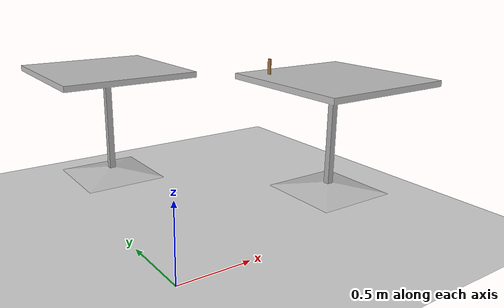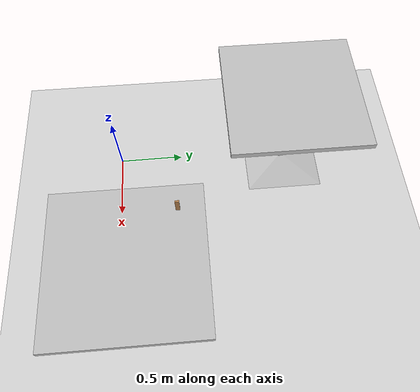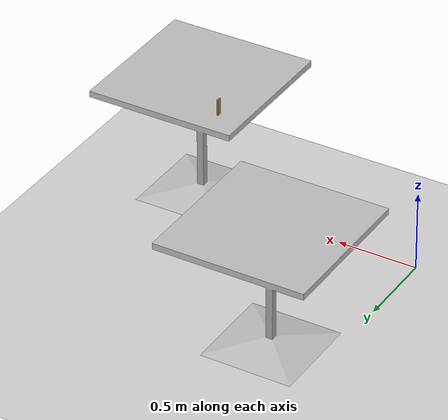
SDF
<sdf version="1.7">
 <world name="default">
  <light name="sun" type="directional">
   <pose>0 0 10 0 -0 0</pose>
   <diffuse>0.8 0.8 0.8 1</diffuse>
   <specular>0.2 0.2 0.2 1</specular>
   <attenuation>
    <range>1000</range>
    <constant>0.9</constant>
    <linear>0.01</linear>
    <quadratic>0.001</quadratic>
   </attenuation>
   <direction>-0.5 0.1 -0.9</direction>
   <spot><inner_angle>0</inner_angle><outer_angle>0</outer_angle><falloff>0</falloff></spot>
  </light>
  <model name="ground_plane">
   <static>1</static>
   <link name="link">
    <collision name="collision">
     <geometry><plane><normal>0 0 1</normal><size>100 100</size></plane></geometry>
     <surface>
      <contact><collide_bitmask>65535</collide_bitmask></contact>
      <friction><ode><mu>100</mu><mu2>50</mu2></ode></friction>
     </surface>
    </collision>
    <visual name="visual">
     <cast_shadows>0</cast_shadows>
     <geometry><plane><normal>0 0 1</normal><size>100 100</size></plane></geometry>
     <material>
      <script><uri>file://media/materials/scripts/gazebo.material</uri><name>Gazebo/Grey</name></script>
     </material>
    </visual>
   </link>
  </model>
  <gravity>0 0 -9.8</gravity>
  <magnetic_field>6e-06 2.3e-05 -4.2e-05</magnetic_field>
  <atmosphere type="adiabatic"/>
  <physics type="ode">
   <max_step_size>0.001</max_step_size>
   <real_time_factor>1</real_time_factor>
   <real_time_update_rate>1000</real_time_update_rate>
  </physics>
  <scene><ambient>0.4 0.4 0.4 1</ambient><background>0.7 0.7 0.7 1</background><shadows>1</shadows></scene>
  <spherical_coordinates>
   <surface_model>EARTH_WGS84</surface_model>
   <latitude_deg>0</latitude_deg>
   <longitude_deg>0</longitude_deg>
   <elevation>0</elevation>
   <heading_deg>0</heading_deg>
  </spherical_coordinates>
  <model name="cafe_table">
   <static>1</static>
   <link name="link">
    <collision name="surface">
     <pose>0 0 0.755 0 -0 0</pose>
     <geometry><box><size>0.913 0.913 0.04</size></box></geometry>
    </collision>
    <collision name="column">
     <pose>0 0 0.37 0 -0 0</pose>
     <geometry><box><size>0.042 0.042 0.74</size></box></geometry>
    </collision>
    <collision name="base">
     <pose>0 0 0.02 0 -0 0</pose>
     <geometry><box><size>0.56 0.56 0.04</size></box></geometry>
    </collision>
    <visual name="visual">
     <geometry><mesh><uri>model://cafe_table/meshes/cafe_table.dae</uri></mesh></geometry>
    </visual>
   </link>
   <pose>1.3 0.2 0.21 0 -0 0</pose>
  </model>
  <model name="cafe_table_clone">
   <static>1</static>
   <link name="link">
    <collision name="surface">
     <pose>0 0 0.755 0 -0 0</pose>
     <geometry><box><size>0.913 0.913 0.04</size></box></geometry>
    </collision>
    <collision name="column">
     <pose>0 0 0.37 0 -0 0</pose>
     <geometry><box><size>0.042 0.042 0.74</size></box></geometry>
    </collision>
    <collision name="base">
     <pose>0 0 0.02 0 -0 0</pose>
     <geometry><box><size>0.56 0.56 0.04</size></box></geometry>
    </collision>
    <visual name="visual">
     <geometry><mesh><uri>model://cafe_table/meshes/cafe_table.dae</uri></mesh></geometry>
    </visual>
   </link>
   <pose>0.2 1.3 0.21 0 -0 0</pose>
  </model>
  <model name="wood_block_10_2_1cm">
   <link name="link">
    <pose>0 0 0.005 0 -0 0</pose>
    <inertial>
     <mass>0.0125</mass>
     <inertia>
      <ixx>7.55208e-07</ixx>
      <ixy>0</ixy>
      <ixz>0</ixz>
      <iyy>1.05208e-05</iyy>
      <iyz>0</iyz>
      <izz>1.10677e-05</izz>
     </inertia>
    </inertial>
    <collision name="collision">
     <geometry><box><size>0.1 0.025 0.01</size></box></geometry>
     <surface>
      <contact>
       <poissons_ratio>0.347</poissons_ratio>
       <elastic_modulus>8.8e+09</elastic_modulus>
       <ode><kp>100000</kp><kd>1</kd><max_vel>1</max_vel><min_depth>0.001</min_depth></ode>
      </contact>
      <friction>
       <ode><mu>100</mu><mu2>50</mu2></ode>
       <torsional>
        <coefficient>1</coefficient>
        <use_patch_radius>0</use_patch_radius>
        <surface_radius>0.05</surface_radius>
       </torsional>
      </friction>
     </surface>
    </collision>
    <visual name="visual">
     <geometry><box><size>0.1 0.025 0.01</size></box></geometry>
     <material>
      <script><uri>file://media/materials/scripts/gazebo.material</uri><name>Gazebo/Wood</name></script>
     </material>
    </visual>
   </link>
   <pose>1.0 0.5 1.035 0.0 1.5708 0.0</pose>
  </model>
 </world>
</sdf>
